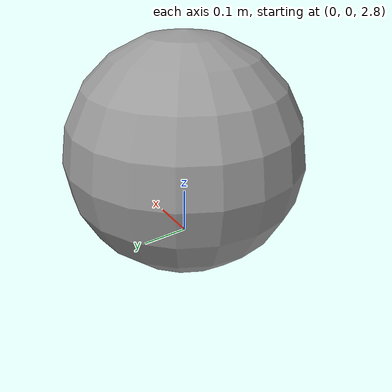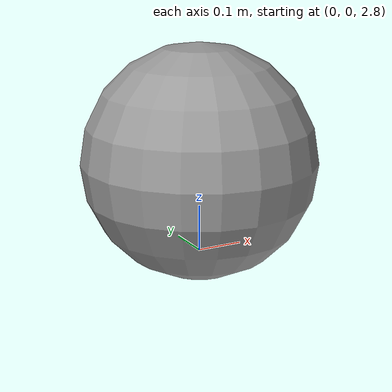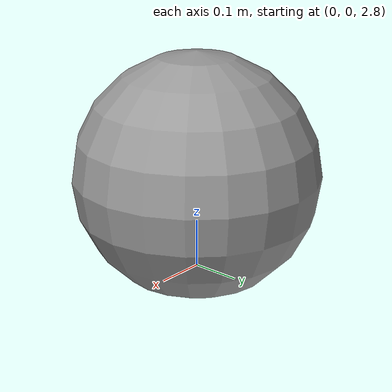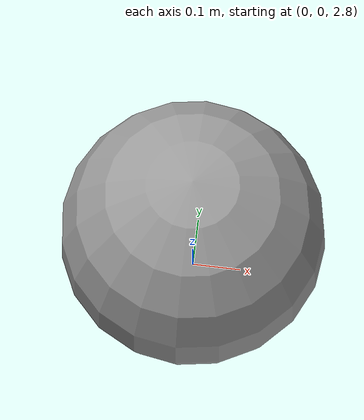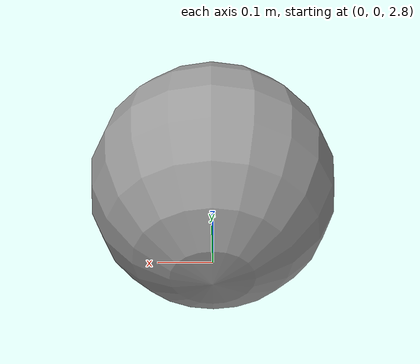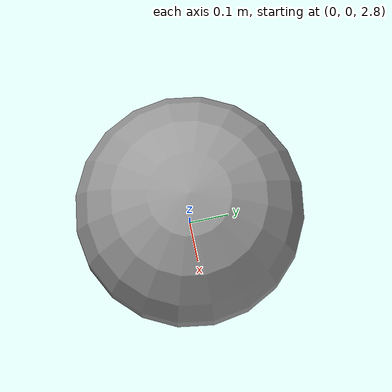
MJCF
<mujoco>
  <option gravity="0 0 -9.81"/>
  <worldbody>
    <body name="surface" pos="0 0 -0.1">
      <geom type="plane" size="20 20 0.1" rgba="0.8 0.8 0.8 1" friction="0.9 0.9 0.9"/>
    </body>
    <body name="steel_ball" pos="0 0 3">
      <geom type="sphere" size="0.25" density="7.8" rgba="0.6 0.6 0.6 1"/>
      <joint name="steel_joint" type="free"/>
    </body>
  </worldbody>
</mujoco>
